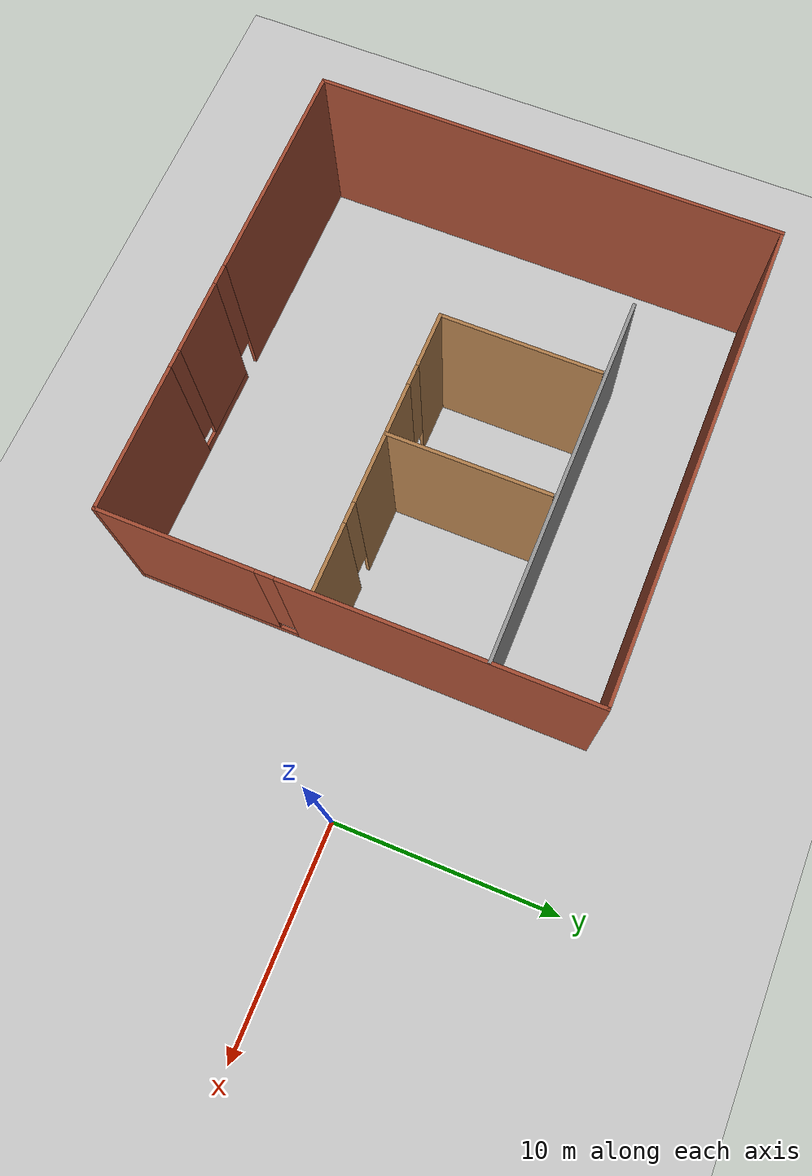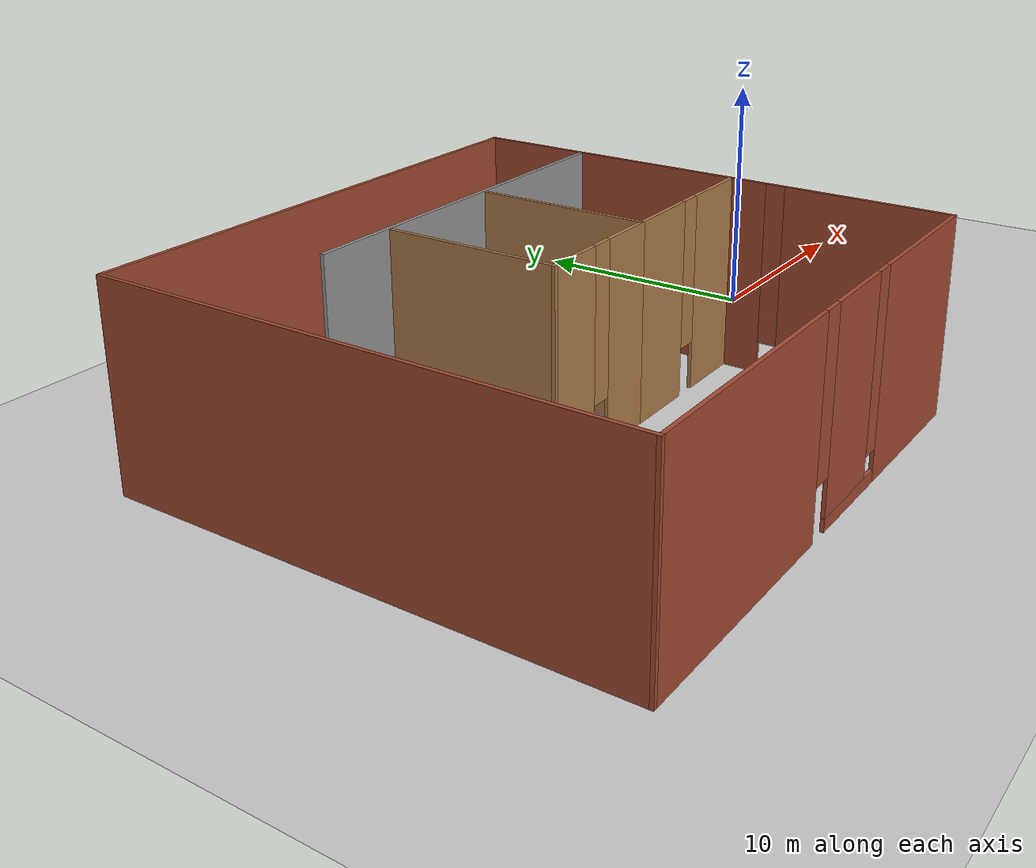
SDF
<sdf version="1.6">
 <world name="default">
  <plugin name="hello" filename="libhello.so"/>
  <light name="sun" type="directional">
   <pose>0 0 10 0 -0 0</pose>
   <diffuse>0.8 0.8 0.8 1</diffuse>
   <specular>0.2 0.2 0.2 1</specular>
   <attenuation>
    <range>1000</range>
    <constant>0.9</constant>
    <linear>0.01</linear>
    <quadratic>0.001</quadratic>
   </attenuation>
   <direction>-0.5 0.1 -0.9</direction>
  </light>
  <model name="my_ball">
   <link name="link_0">
    <inertial>
     <mass>1</mass>
     <inertia><ixx>0.1</ixx><ixy>0</ixy><ixz>0</ixz><iyy>0.1</iyy><iyz>0</iyz><izz>0.1</izz></inertia>
    </inertial>
    <visual name="visual">
     <geometry><sphere><radius>0.1</radius></sphere></geometry>
     <material>
      <lighting>1</lighting>
      <script><uri>file://media/materials/scripts/gazebo.material</uri><name>Gazebo/Grey</name></script>
      <shader type="pixel"><normal_map>__default__</normal_map></shader>
      <ambient>1 1 1 1</ambient>
      <diffuse>1 1 1 1</diffuse>
      <specular>1 1 1 1</specular>
      <emissive>1 1 1 1</emissive>
     </material>
    </visual>
    <collision name="collision">
     <geometry><sphere><radius>0.1</radius></sphere></geometry>
     <surface>
      <friction>
       <ode><mu>1</mu><mu2>1</mu2><fdir1>0 0 0</fdir1><slip1>0</slip1><slip2>0</slip2></ode>
       <torsional>
        <coefficient>1</coefficient>
        <patch_radius>0</patch_radius>
        <surface_radius>0</surface_radius>
        <use_patch_radius>1</use_patch_radius>
        <ode><slip>0</slip></ode>
       </torsional>
      </friction>
      <bounce><restitution_coefficient>0</restitution_coefficient><threshold>1e+06</threshold></bounce>
      <contact>
       <collide_without_contact>0</collide_without_contact>
       <collide_without_contact_bitmask>1</collide_without_contact_bitmask>
       <collide_bitmask>1</collide_bitmask>
       <ode>
        <soft_cfm>0</soft_cfm>
        <soft_erp>0.2</soft_erp>
        <kp>1e+13</kp>
        <kd>1</kd>
        <max_vel>0.01</max_vel>
        <min_depth>0</min_depth>
       </ode>
       <bullet>
        <split_impulse>1</split_impulse>
        <split_impulse_penetration_threshold>-0.01</split_impulse_penetration_threshold>
        <soft_cfm>0</soft_cfm>
        <soft_erp>0.2</soft_erp>
        <kp>1e+13</kp>
        <kd>1</kd>
       </bullet>
      </contact>
     </surface>
    </collision>
   </link>
   <static>0</static>
  </model>
  <model name="Building">
   <pose>-17.446 -1.67 0 0 -0 0</pose>
   <link name="Wall_12">
    <collision name="Wall_12_Collision">
     <geometry><box><size>20.75 0.15 8</size></box></geometry>
     <pose>0 0 4 0 -0 0</pose>
    </collision>
    <visual name="Wall_12_Visual">
     <pose>0 0 4 0 -0 0</pose>
     <geometry><box><size>20.75 0.15 8</size></box></geometry>
     <material>
      <script><uri>file://media/materials/scripts/gazebo.material</uri><name>Gazebo/Bricks</name></script>
      <ambient>1 1 1 1</ambient>
     </material>
     <meta><layer>0</layer></meta>
    </visual>
    <pose>-10.675 0 0 0 -0 1.5708</pose>
   </link>
   <link name="Wall_13">
    <collision name="Wall_13_Collision">
     <geometry><box><size>21.5 0.15 8</size></box></geometry>
     <pose>0 0 4 0 -0 0</pose>
    </collision>
    <visual name="Wall_13_Visual">
     <pose>0 0 4 0 -0 0</pose>
     <geometry><box><size>21.5 0.15 8</size></box></geometry>
     <material>
      <script><uri>file://media/materials/scripts/gazebo.material</uri><name>Gazebo/Bricks</name></script>
      <ambient>1 1 1 1</ambient>
     </material>
     <meta><layer>0</layer></meta>
    </visual>
    <pose>1e-06 10.3 0 0 -0 0</pose>
   </link>
   <link name="Wall_14">
    <pose>10.675 0 0 0 0 -1.5708</pose>
    <visual name="Wall_14_Visual_0">
     <pose>-3.76806 0 4 0 -0 0</pose>
     <geometry><box><size>13.2139 0.15 8</size></box></geometry>
     <material>
      <script><uri>file://media/materials/scripts/gazebo.material</uri><name>Gazebo/Bricks</name></script>
      <ambient>1 1 1 1</ambient>
     </material>
     <meta><layer>0</layer></meta>
    </visual>
    <collision name="Wall_14_Collision_0">
     <geometry><box><size>13.2139 0.15 8</size></box></geometry>
     <pose>-3.76806 0 4 0 -0 0</pose>
    </collision>
    <visual name="Wall_14_Visual_1">
     <pose>6.60694 0 0.25 0 -0 0</pose>
     <geometry><box><size>7.53612 0.15 0.5</size></box></geometry>
     <material>
      <script><uri>file://media/materials/scripts/gazebo.material</uri><name>Gazebo/Bricks</name></script>
      <ambient>1 1 1 1</ambient>
     </material>
     <meta><layer>0</layer></meta>
    </visual>
    <collision name="Wall_14_Collision_1">
     <geometry><box><size>7.53612 0.15 0.5</size></box></geometry>
     <pose>6.60694 0 0.25 0 -0 0</pose>
    </collision>
    <visual name="Wall_14_Visual_2">
     <pose>7.00694 0 4.25 0 -0 0</pose>
     <geometry><box><size>6.73612 0.15 7.5</size></box></geometry>
     <material>
      <script><uri>file://media/materials/scripts/gazebo.material</uri><name>Gazebo/Bricks</name></script>
      <ambient>1 1 1 1</ambient>
     </material>
     <meta><layer>0</layer></meta>
    </visual>
    <collision name="Wall_14_Collision_2">
     <geometry><box><size>6.73612 0.15 7.5</size></box></geometry>
     <pose>7.00694 0 4.25 0 -0 0</pose>
    </collision>
    <visual name="Wall_14_Visual_3">
     <pose>3.23888 0 4.65 0 -0 0</pose>
     <geometry><box><size>0.8 0.15 6.7</size></box></geometry>
     <material>
      <script><uri>file://media/materials/scripts/gazebo.material</uri><name>Gazebo/Bricks</name></script>
      <ambient>1 1 1 1</ambient>
     </material>
     <meta><layer>0</layer></meta>
    </visual>
    <collision name="Wall_14_Collision_3">
     <geometry><box><size>0.8 0.15 6.7</size></box></geometry>
     <pose>3.23888 0 4.65 0 -0 0</pose>
    </collision>
   </link>
   <link name="Wall_15">
    <pose>1e-06 -10.3 0 0 -0 3.14159</pose>
    <visual name="Wall_15_Visual_0">
     <pose>-7.49776 0 4 0 -0 0</pose>
     <geometry><box><size>6.50448 0.15 8</size></box></geometry>
     <material>
      <script><uri>file://media/materials/scripts/gazebo.material</uri><name>Gazebo/Bricks</name></script>
      <ambient>1 1 1 1</ambient>
     </material>
     <meta><layer>0</layer></meta>
    </visual>
    <collision name="Wall_15_Collision_0">
     <geometry><box><size>6.50448 0.15 8</size></box></geometry>
     <pose>-7.49776 0 4 0 -0 0</pose>
    </collision>
    <visual name="Wall_15_Visual_1">
     <pose>5.74047 0 4 0 -0 0</pose>
     <geometry><box><size>10.019 0.15 8</size></box></geometry>
     <material>
      <script><uri>file://media/materials/scripts/gazebo.material</uri><name>Gazebo/Bricks</name></script>
      <ambient>1 1 1 1</ambient>
     </material>
     <meta><layer>0</layer></meta>
    </visual>
    <collision name="Wall_15_Collision_1">
     <geometry><box><size>10.019 0.15 8</size></box></geometry>
     <pose>5.74047 0 4 0 -0 0</pose>
    </collision>
    <visual name="Wall_15_Visual_2">
     <pose>-2.20728 0 0.25 0 -0 0</pose>
     <geometry><box><size>4.07647 0.15 0.5</size></box></geometry>
     <material>
      <script><uri>file://media/materials/scripts/gazebo.material</uri><name>Gazebo/Bricks</name></script>
      <ambient>1 1 1 1</ambient>
     </material>
     <meta><layer>0</layer></meta>
    </visual>
    <collision name="Wall_15_Collision_2">
     <geometry><box><size>4.07647 0.15 0.5</size></box></geometry>
     <pose>-2.20728 0 0.25 0 -0 0</pose>
    </collision>
    <visual name="Wall_15_Visual_3">
     <pose>-1.80728 0 4.25 0 -0 0</pose>
     <geometry><box><size>3.27647 0.15 7.5</size></box></geometry>
     <material>
      <script><uri>file://media/materials/scripts/gazebo.material</uri><name>Gazebo/Bricks</name></script>
      <ambient>1 1 1 1</ambient>
     </material>
     <meta><layer>0</layer></meta>
    </visual>
    <collision name="Wall_15_Collision_3">
     <geometry><box><size>3.27647 0.15 7.5</size></box></geometry>
     <pose>-1.80728 0 4.25 0 -0 0</pose>
    </collision>
    <visual name="Wall_15_Visual_4">
     <pose>-3.84552 0 4.65 0 -0 0</pose>
     <geometry><box><size>0.8 0.15 6.7</size></box></geometry>
     <material>
      <script><uri>file://media/materials/scripts/gazebo.material</uri><name>Gazebo/Bricks</name></script>
      <ambient>1 1 1 1</ambient>
     </material>
     <meta><layer>0</layer></meta>
    </visual>
    <collision name="Wall_15_Collision_4">
     <geometry><box><size>0.8 0.15 6.7</size></box></geometry>
     <pose>-3.84552 0 4.65 0 -0 0</pose>
    </collision>
    <visual name="Wall_15_Visual_5">
     <pose>0.280951 0 5 0 -0 0</pose>
     <geometry><box><size>0.9 0.15 6</size></box></geometry>
     <material>
      <script><uri>file://media/materials/scripts/gazebo.material</uri><name>Gazebo/Bricks</name></script>
      <ambient>1 1 1 1</ambient>
     </material>
     <meta><layer>0</layer></meta>
    </visual>
    <collision name="Wall_15_Collision_5">
     <geometry><box><size>0.9 0.15 6</size></box></geometry>
     <pose>0.280951 0 5 0 -0 0</pose>
    </collision>
   </link>
   <link name="Wall_17">
    <collision name="Wall_17_Collision">
     <geometry><box><size>16 0.15 8</size></box></geometry>
     <pose>0 0 4 0 -0 0</pose>
    </collision>
    <visual name="Wall_17_Visual">
     <pose>0 0 4 0 -0 0</pose>
     <geometry><box><size>16 0.15 8</size></box></geometry>
     <material>
      <script><uri>file://media/materials/scripts/gazebo.material</uri><name>Gazebo/Grey</name></script>
      <ambient>1 1 1 1</ambient>
     </material>
     <meta><layer>0</layer></meta>
    </visual>
    <pose>2.717 5.742 0 0 -0 3.14159</pose>
   </link>
   <link name="Wall_19">
    <pose>7.136 -1.297 0 0 -0 3.14159</pose>
    <visual name="Wall_19_Visual_0">
     <pose>-2.02813 0 4 0 -0 0</pose>
     <geometry><box><size>2.94373 0.15 8</size></box></geometry>
     <material>
      <script><uri>file://media/materials/scripts/gazebo.material</uri><name>Gazebo/Wood</name></script>
      <ambient>1 1 1 1</ambient>
     </material>
     <meta><layer>0</layer></meta>
    </visual>
    <collision name="Wall_19_Collision_0">
     <geometry><box><size>2.94373 0.15 8</size></box></geometry>
     <pose>-2.02813 0 4 0 -0 0</pose>
    </collision>
    <visual name="Wall_19_Visual_1">
     <pose>1.92186 0 4 0 -0 0</pose>
     <geometry><box><size>3.15627 0.15 8</size></box></geometry>
     <material>
      <script><uri>file://media/materials/scripts/gazebo.material</uri><name>Gazebo/Wood</name></script>
      <ambient>1 1 1 1</ambient>
     </material>
     <meta><layer>0</layer></meta>
    </visual>
    <collision name="Wall_19_Collision_1">
     <geometry><box><size>3.15627 0.15 8</size></box></geometry>
     <pose>1.92186 0 4 0 -0 0</pose>
    </collision>
    <visual name="Wall_19_Visual_2">
     <pose>-0.106271 0 5 0 -0 0</pose>
     <geometry><box><size>0.9 0.15 6</size></box></geometry>
     <material>
      <script><uri>file://media/materials/scripts/gazebo.material</uri><name>Gazebo/Wood</name></script>
      <ambient>1 1 1 1</ambient>
     </material>
     <meta><layer>0</layer></meta>
    </visual>
    <collision name="Wall_19_Collision_2">
     <geometry><box><size>0.9 0.15 6</size></box></geometry>
     <pose>-0.106271 0 5 0 -0 0</pose>
    </collision>
   </link>
   <link name="Wall_20">
    <collision name="Wall_20_Collision">
     <geometry><box><size>7 0.15 8</size></box></geometry>
     <pose>0 0 4 0 -0 0</pose>
    </collision>
    <visual name="Wall_20_Visual">
     <pose>0 0 4 0 -0 0</pose>
     <geometry><box><size>7 0.15 8</size></box></geometry>
     <material>
      <script><uri>file://media/materials/scripts/gazebo.material</uri><name>Gazebo/Wood</name></script>
      <ambient>1 1 1 1</ambient>
     </material>
     <meta><layer>0</layer></meta>
    </visual>
    <pose>3.711 2.128 0 0 -0 1.5708</pose>
   </link>
   <link name="Wall_22">
    <pose>0.911 -1.297 0 0 -0 3.14159</pose>
    <visual name="Wall_22_Visual_0">
     <pose>-1.69722 0 4 0 -0 0</pose>
     <geometry><box><size>2.35555 0.15 8</size></box></geometry>
     <material>
      <script><uri>file://media/materials/scripts/gazebo.material</uri><name>Gazebo/Wood</name></script>
      <ambient>1 1 1 1</ambient>
     </material>
     <meta><layer>0</layer></meta>
    </visual>
    <collision name="Wall_22_Collision_0">
     <geometry><box><size>2.35555 0.15 8</size></box></geometry>
     <pose>-1.69722 0 4 0 -0 0</pose>
    </collision>
    <visual name="Wall_22_Visual_1">
     <pose>1.62777 0 4 0 -0 0</pose>
     <geometry><box><size>2.49445 0.15 8</size></box></geometry>
     <material>
      <script><uri>file://media/materials/scripts/gazebo.material</uri><name>Gazebo/Wood</name></script>
      <ambient>1 1 1 1</ambient>
     </material>
     <meta><layer>0</layer></meta>
    </visual>
    <collision name="Wall_22_Collision_1">
     <geometry><box><size>2.49445 0.15 8</size></box></geometry>
     <pose>1.62777 0 4 0 -0 0</pose>
    </collision>
    <visual name="Wall_22_Visual_2">
     <pose>-0.06945 0 5 0 -0 0</pose>
     <geometry><box><size>0.9 0.15 6</size></box></geometry>
     <material>
      <script><uri>file://media/materials/scripts/gazebo.material</uri><name>Gazebo/Wood</name></script>
      <ambient>1 1 1 1</ambient>
     </material>
     <meta><layer>0</layer></meta>
    </visual>
    <collision name="Wall_22_Collision_2">
     <geometry><box><size>0.9 0.15 6</size></box></geometry>
     <pose>-0.06945 0 5 0 -0 0</pose>
    </collision>
   </link>
   <link name="Wall_23">
    <collision name="Wall_23_Collision">
     <geometry><box><size>7 0.15 8</size></box></geometry>
     <pose>0 0 4 0 -0 0</pose>
    </collision>
    <visual name="Wall_23_Visual">
     <pose>0 0 4 0 -0 0</pose>
     <geometry><box><size>7 0.15 8</size></box></geometry>
     <material>
      <script><uri>file://media/materials/scripts/gazebo.material</uri><name>Gazebo/Wood</name></script>
      <ambient>1 1 1 1</ambient>
     </material>
     <meta><layer>0</layer></meta>
    </visual>
    <pose>-1.889 2.128 0 0 -0 1.5708</pose>
   </link>
   <static>1</static>
  </model>
  <model name="ground_plane">
   <static>1</static>
   <link name="link">
    <collision name="collision">
     <geometry><plane><normal>0 0 1</normal><size>100 100</size></plane></geometry>
     <surface>
      <contact><collide_bitmask>65535</collide_bitmask></contact>
      <friction><ode><mu>100</mu><mu2>50</mu2></ode></friction>
     </surface>
    </collision>
    <visual name="visual">
     <cast_shadows>0</cast_shadows>
     <geometry><plane><normal>0 0 1</normal><size>100 100</size></plane></geometry>
     <material>
      <script><uri>file://media/materials/scripts/gazebo.material</uri><name>Gazebo/Grey</name></script>
     </material>
    </visual>
   </link>
  </model>
  <gravity>0 0 -9.8</gravity>
  <magnetic_field>6e-06 2.3e-05 -4.2e-05</magnetic_field>
  <atmosphere type="adiabatic"/>
  <physics name="default_physics" default="0" type="ode">
   <max_step_size>0.001</max_step_size>
   <real_time_factor>1</real_time_factor>
   <real_time_update_rate>1000</real_time_update_rate>
  </physics>
  <scene><ambient>0.4 0.4 0.4 1</ambient><background>0.7 0.7 0.7 1</background><shadows>1</shadows></scene>
  <spherical_coordinates>
   <surface_model>EARTH_WGS84</surface_model>
   <latitude_deg>0</latitude_deg>
   <longitude_deg>0</longitude_deg>
   <elevation>0</elevation>
   <heading_deg>0</heading_deg>
  </spherical_coordinates>
 </world>
</sdf>
